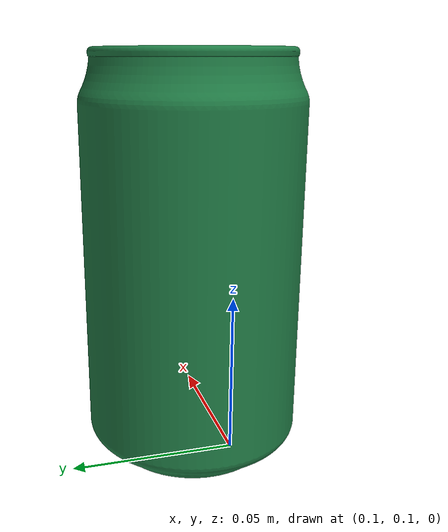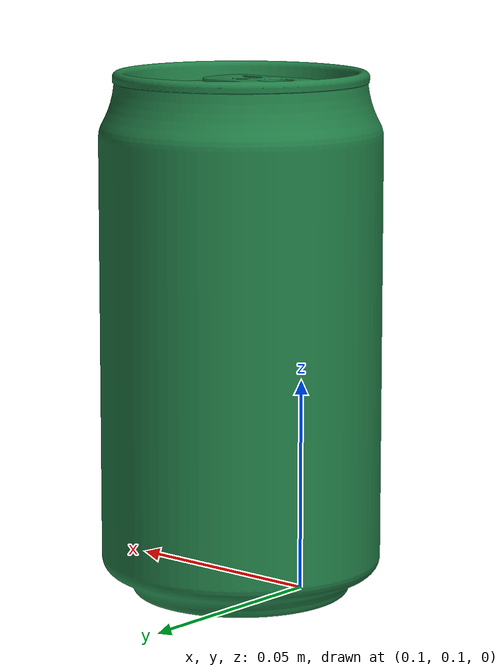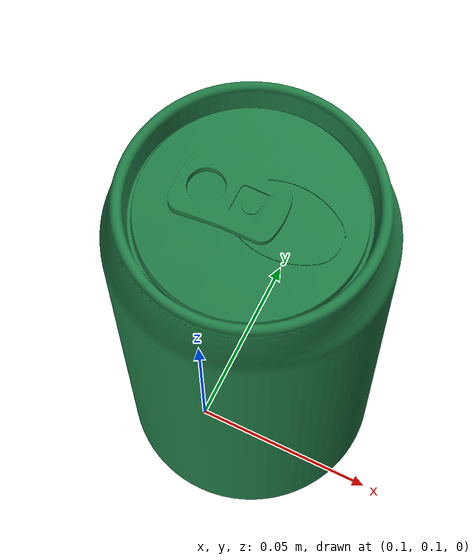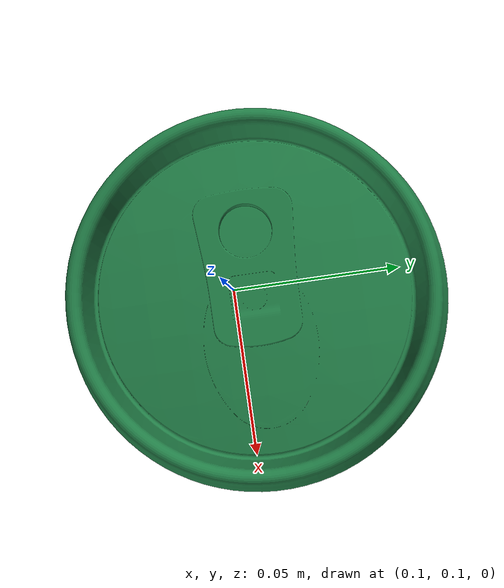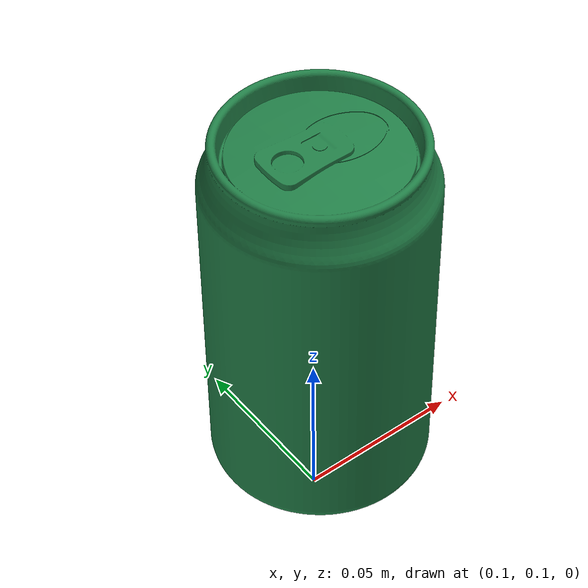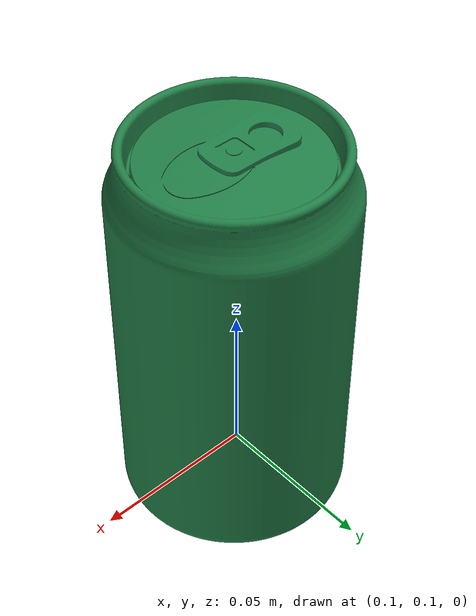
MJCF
<mujoco model="can">
  <asset>
    <mesh file="meshes/can_real.stl" name="can_mesh" scale="0.001 0.001 0.001"/>
    <material name="coke" reflectance="0.7" texrepeat="1 1" texuniform="true" rgba="0.13 0.5 0.28 1"/>
  </asset>
  <worldbody>
    <body>
      <body name="object">
        <geom pos="0 0 0" mesh="can_mesh" type="mesh" solimp="0.998 0.998 0.001" solref="0.001 1" density="100" friction="0.95 0.3 0.1" material="coke" group="0" condim="4"/>
      </body>
      <site rgba="0 0 0 0" size="0.0005" pos="110 110 0" name="bottom_site"/>
      <site rgba="0 0 0 0" size="0.0005" pos="110 110 122.50" name="top_site"/>
      <site rgba="0 0 0 0" size="0.0005" pos="110 110 60" name="horizontal_radius_site"/>
    </body>
  </worldbody>
</mujoco>
